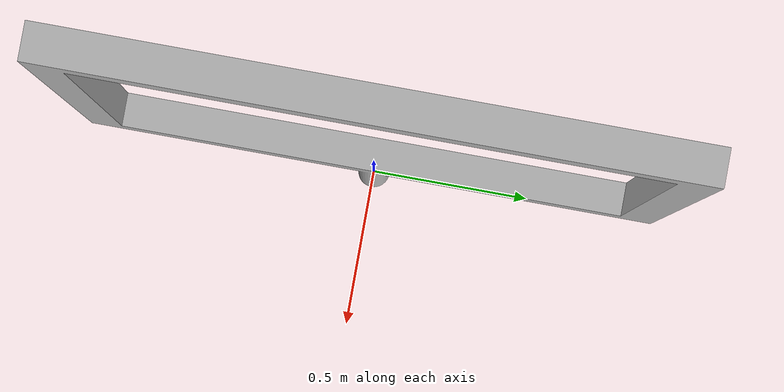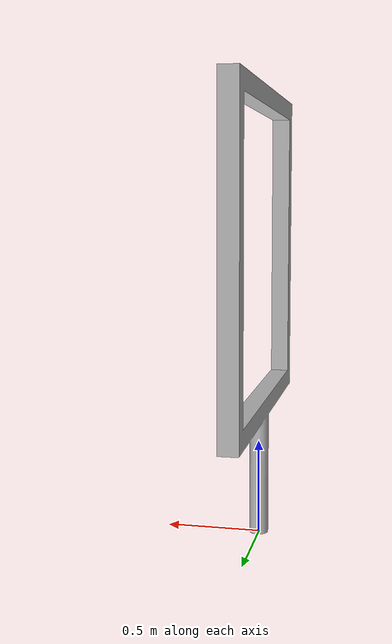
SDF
<?xml version="1.0"?>
<sdf version="1.5">
    <model name="frame_1_5">
        <static>true</static>
        <link name="link">
            <collision name="collision1">
                <pose>0 0 0 0 0 0</pose>
                <geometry>
                    <mesh>
                        <uri>model://frame_1.5/meshes/frame_1_5.dae</uri>
                    </mesh>
                </geometry>
            </collision>
            <visual name="visual1">

              <pose>0 0 0 0 0 0</pose>
              <geometry>
              <mesh>
                 <uri>model://frame_1.5/meshes/frame_1_5.dae</uri>
              </mesh>
              </geometry>
            </visual>
        </link>
    </model>
</sdf>
